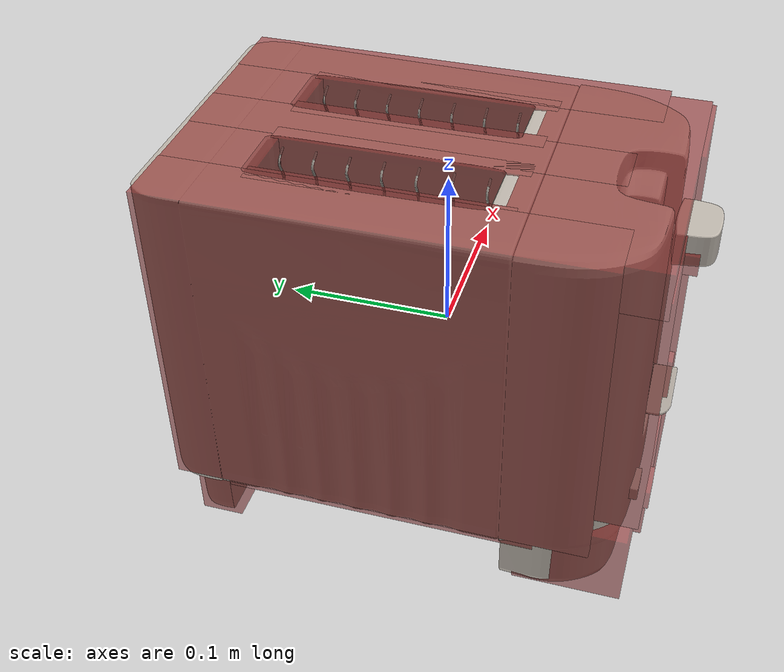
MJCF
<?xml version='1.0' encoding='UTF-8'?>
<mujoco model="model">
  <option timestep="0.002" gravity="0.0 0.0 -9.81"/>
  <compiler angle="radian"/>
  <asset>
    <mesh file="visuals/button_cancel.obj" name="button_cancel_vis"/>
    <mesh file="visuals/knob_doneness.obj" name="knob_doneness_vis"/>
    <mesh file="visuals/lever.obj" name="lever_vis"/>
    <mesh file="visuals/Body001.obj" name="Body001_vis"/>
    <mesh file="visuals/Body002.obj" name="Body002_vis"/>
    <texture file="visuals/T_BC001.png" name="Body001_material" type="2d"/>
    <material name="Body001_material" rgba="1 1 1 1.0" texture="Body001_material" shininess="0.4472135901451111" specular="0.5"/>
    <texture file="visuals/T_BC001.png" name="button_cancel_material" type="2d"/>
    <material name="button_cancel_material" rgba="1 1 1 1.0" texture="button_cancel_material" shininess="0.4472135901451111" specular="0.33333333333333337"/>
    <texture file="visuals/T_BC001.png" name="knob_doneness_material" type="2d"/>
    <material name="knob_doneness_material" rgba="1 1 1 1.0" texture="knob_doneness_material" shininess="0.4472135901451111" specular="0.33333333333333337"/>
    <texture file="visuals/T_BC001.png" name="lever_material" type="2d"/>
    <material name="lever_material" rgba="1 1 1 1.0" texture="lever_material" shininess="0.4472135901451111" specular="0.33333333333333337"/>
    <texture file="visuals/T_BC001.png" name="Body002_material" type="2d"/>
    <material name="Body002_material" rgba="1 1 1 1.0" texture="Body002_material" shininess="0.4472135901451111" specular="8"/>
  </asset>
  <default>
    <default class="visual">
      <geom conaffinity="0" contype="0" group="1" type="mesh"/>
    </default>
    <default class="collision_1">
      <geom group="0" rgba="0.5 0 0 0.5" solref="0.004 1" solimp="0.998 0.998 0.001"/>
    </default>
    <default class="collision_2">
      <geom group="0" rgba="0.5 0 0 0.5" solref="0.004 1" solimp="0.998 0.998 0.001"/>
    </default>
    <default class="collision_3">
      <geom group="0" rgba="0.5 0 0 0.5" solref="0.004 1" solimp="0.998 0.998 0.001"/>
    </default>
    <default class="collision_4">
      <geom group="0" rgba="0.5 0 0 0.5" solref="0.004 1" solimp="0.998 0.998 0.001"/>
    </default>
    <default class="collision_5">
      <geom group="0" rgba="0.5 0 0 0.5" solref="0.004 1" solimp="0.998 0.998 0.001"/>
    </default>
    <default class="spawn">
      <geom group="0" rgba="1 1 1 0.5" contype="0" conaffinity="0"/>
      <site group="0" rgba="1 1 1 0.5"/>
    </default>
    <default class="region">
      <geom group="1" conaffinity="0" contype="0" rgba="0 1 0 0" mass="0"/>
    </default>
  </default>
  <worldbody>
    <body>
      <body name="object">
        <geom mesh="Body001_vis" type="mesh" solimp="0.998 0.998 0.001" solref="0.001 1" friction="0.95 0.3 0.1" class="visual" material="Body001_material"/>
        <geom type="box" pos="-0.07403398 0.01898873 0.02002745" size="0.018979109823703766 0.1295662820339203 0.10323614627122879" quat="1.0 0.0 0.0 0.0" class="collision_1"/>
        <geom type="box" pos="0.05653700 -0.10120759 -0.00059107" size="0.02971840836107731 0.0364966057240963 0.12190387398004532" quat="1.0 0.0 0.0 0.0" class="collision_1"/>
        <geom type="box" pos="-0.05653208 -0.09827990 -0.09683546" size="0.02971739135682583 0.03320560231804848 0.025125745683908463" quat="1.0 0.0 0.0 0.0" class="collision_1"/>
        <geom type="box" pos="0.05653700 0.12994401 0.01801616" size="0.029720235615968704 0.009987513534724712 0.10275664925575256" quat="1.0 0.0 0.0 0.0" class="collision_1"/>
        <geom type="box" pos="0.00067335 0.12668581 -0.10352331" size="0.08547169715166092 0.013244995847344398 0.019234800711274147" quat="1.0 0.0 0.0 0.0" class="collision_1"/>
        <geom type="box" pos="-0.00008995 -0.08980122 0.10896560" size="0.08683852851390839 0.0453779473900795 0.014178567565977573" quat="1.0 0.0 0.0 0.0" class="collision_1"/>
        <geom type="box" pos="-0.00008995 -0.10076850 -0.09390536" size="0.031053435057401657 0.03560931980609894 0.028256407007575035" quat="1.0 0.0 0.0 0.0" class="collision_1"/>
        <geom type="box" pos="0.00026155 0.02353272 0.02002745" size="0.016907949000597 0.125022292137146 0.10323614627122879" quat="1.0 0.0 0.0 0.0" class="collision_1"/>
        <geom type="box" pos="0.07395250 0.01898873 0.02002745" size="0.01898006722331047 0.1295662820339203 0.10323614627122879" quat="1.0 0.0 0.0 0.0" class="collision_1"/>
        <geom type="box" pos="-0.00008995 0.12031071 0.01983587" size="0.08683852851390839 0.027964266017079353 0.10330605506896973" quat="1.0 0.0 0.0 0.0" class="collision_1"/>
        <geom type="box" pos="-0.02918475 0.12994401 0.01991339" size="0.052998293191194534 0.009986789897084236 0.10085314512252808" quat="1.0 0.0 0.0 0.0" class="collision_1"/>
        <geom type="box" pos="-0.05780342 0.02322597 0.02002745" size="0.005690587218850851 0.07395661622285843 0.10323614627122879" quat="1.0 0.0 0.0 0.0" class="collision_1"/>
        <geom type="box" pos="-0.01504071 0.02322597 0.02002745" size="0.006103638559579849 0.07395661622285843 0.10323614627122879" quat="1.0 0.0 0.0 0.0" class="collision_1"/>
        <geom type="box" pos="0.01555631 0.02322597 0.02002745" size="0.006103638559579849 0.07395661622285843 0.10323614627122879" quat="1.0 0.0 0.0 0.0" class="collision_1"/>
        <geom type="box" pos="0.05686512 0.02322597 0.02002745" size="0.006103638559579849 0.07395661622285843 0.10323614627122879" quat="1.0 0.0 0.0 0.0" class="collision_1"/>
        <geom type="box" pos="-0.05653208 -0.10296534 0.02379228" size="0.02971823513507843 0.03320617228746414 0.08166666328907013" quat="1.0 0.0 0.0 0.0" class="collision_1"/>
        <geom type="box" pos="-0.00044260 0.01833216 -0.08197476" size="0.09217625856399536 0.09575877338647842 0.005016511306166649" quat="1.0 0.0 0.0 0.0" class="collision_1"/>
        <body name="button_cancel">
          <joint axis="0.0 1.0 0.0" pos="-0.04419765 -0.13697638 -0.06627259" limited="true" name="button_cancel_joint" range="0.0 0.002" type="slide" damping="1" frictionloss="1" armature=".01" stiffness="4" springref="-1"/>
          <geom mesh="button_cancel_vis" type="mesh" solimp="0.998 0.998 0.001" solref="0.001 1" friction="0.95 0.3 0.1" class="visual" material="button_cancel_material"/>
          <geom class="collision_2" type="box" pos="-0.04425679 -0.13582361 -0.06608022" size="0.011155800893902779 0.0030968221835792065 0.006469643209129572" quat="1.0 0.0 0.0 0.0" name="button_cancel_main"/>
        </body>
        <body name="knob_doneness">
          <joint axis="0.0 1.0 0.0" pos="-0.00052799 -0.13152588 -0.01408188" limited="true" name="knob_doneness_joint" range="0.0 5.410520681182422" type="hinge" damping="0.05" frictionloss="0.75" armature="1"/>
          <geom mesh="knob_doneness_vis" type="mesh" solimp="0.998 0.998 0.001" solref="0.001 1" friction="0.95 0.3 0.1" class="visual" material="knob_doneness_material"/>
          <geom type="cylinder" pos="-0.00032238 -0.12732554 -0.01411330" size="0.015051501803100109 0.001315755071118474" quat="0.7071067094802856 -0.7071068286895752 -1.5700929612083792e-16 -2.2148510003422914e-23" class="collision_3" friction="100 0.5 0.01"/>
          <geom class="collision_3" type="box" pos="-0.00043603 -0.13348679 -0.01367912" size="0.004999999888241291 0.004999999888241291 0.014000034891068935" quat="1.0 0.0 0.0 0.0" name="knob_doneness_main" friction="100 0.5 0.01"/>
        </body>
        <body name="lever">
          <joint axis="0.0 0.0 -1.0" pos="-0.00013122 -0.10784066 0.08122164" limited="true" name="lever_joint" range="0.0 0.06" type="slide" damping="1" frictionloss="1" armature=".1" stiffness="2.5" springref="-0.5"/>
          <geom class="region" name="reg_slotR" type="box" pos="0.0371991 0.024856 0.122645795" size="0.01434019 0.06601277 0.07599995500000001"/>
          <geom class="region" name="reg_slotL" type="box" pos="-0.03672552 0.024856 0.122645795" size="0.013851930000000002 0.06601277 0.07599995500000001"/>
          <geom mesh="lever_vis" type="mesh" solimp="0.998 0.998 0.001" solref="0.001 1" friction="0.95 0.3 0.1" class="visual" material="lever_material"/>
          <geom class="collision_4" type="box" pos="-0.00008995 -0.13796002 0.08164309" size="0.019928283989429474 0.006162713281810284 0.006168621592223644" quat="1.0 0.0 0.0 0.0" name="lever_handle"/>
          <geom type="box" pos="0.00019454 -0.11664625 0.08222974" size="0.0043227034620940685 0.013749341480433941 0.001964307390153408" quat="1.0 0.0 0.0 0.0" class="collision_4"/>
          <geom class="collision_4" type="box" pos="-0.03604443 0.02475868 0.04507087" size="0.01249999925494194 0.06431221961975098 0.0010818070732057095" quat="1.0 0.0 0.0 0.0" name="slotL_floor"/>
          <geom class="collision_4" type="box" pos="0.03620418 0.02475868 0.04507087" size="0.01249999925494194 0.06431420147418976 0.0010818190639838576" quat="1.0 0.0 0.0 0.0" name="slotR_floor"/>
        </body>
        <body name="Body002">
          <geom mesh="Body002_vis" type="mesh" solimp="0.998 0.998 0.001" solref="0.001 1" friction="0.95 0.3 0.1" class="visual" material="Body002_material"/>
        </body>
        <geom class="region" name="reg_main" type="box" pos="0.0 0.0039928249999999915 0.0" size="0.09384639 0.14236575499999998 0.12340998"/>
      </body>
    </body>
  </worldbody>
  <actuator>
    <motor name="button_cancel_joint_actuator" joint="button_cancel_joint" gear="0.2"/>
    <motor name="knob_doneness_joint_actuator" joint="knob_doneness_joint" gear="5"/>
    <motor name="lever_joint_actuator" joint="lever_joint" gear="2"/>
  </actuator>
</mujoco>
